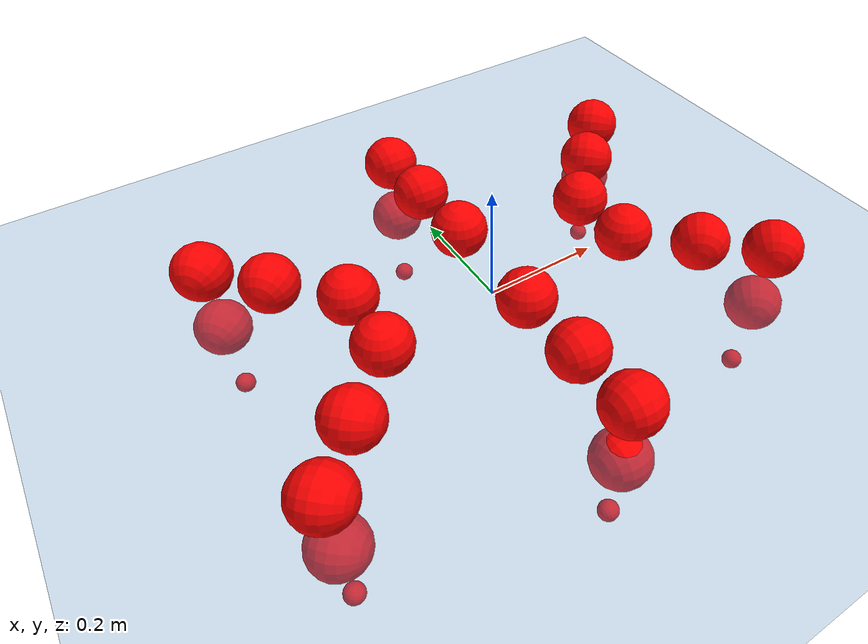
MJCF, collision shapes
<mujoco model="Golem">
  <compiler angle="radian" assetdir="assets" balanceinertia="true" inertiafromgeom="false"/>

  <option timestep="0.005" density="1.2" viscosity="2e-05"/>

  <size nkey="1"/>

  <visual>
    <quality shadowsize="8192"/>
    <map shadowclip="0.5"/>
  </visual>

  <default>
    <default class="/">
      <joint armature="0.01" damping="0.01" frictionloss="0.01"/>
      <geom contype="0" conaffinity="0" group="1" solref="-1000 -80"/>
      <site size="0.01 0.005 0.005" group="5"/>
      <general forcelimited="true" biastype="affine" gainprm="25" biasprm="0 -25 -0.5"/>
      <default class="visual">
        <geom type="mesh" group="2"/>
      </default>
      <default class="collision">
        <geom group="3"/>
      </default>
      <default class="foot">
        <geom size="0.01 0 0" condim="6" group="4" priority="1" solimp="0.015 1 0.01"/>
      </default>
      <default class="reward_collision_sphere">
        <geom group="5" rgba="1 0 0 1"/>
      </default>
    </default>
  </default>

  <asset>
    <texture type="skybox" colorspace="auto" name="//unnamed_texture_0" builtin="gradient" rgb1="0.95 0.95 0.95" rgb2="0.95 0.95 0.95" width="100" height="600"/>
    <texture type="2d" colorspace="auto" name="texplane" builtin="checker" rgb1="0.345 0.575 0.748" rgb2="0.345 0.575 0.748" markrgb="1 1 1" width="512" height="512"/>
    <material name="MatPlane" class="/" texture="texplane" texuniform="true" texrepeat="2 2" specular="0.9"/>
    <mesh name="body" class="/" file="body.stl" scale="0.001 0.001 0.001"/>
    <mesh name="coxa" class="/" file="coxa.stl" scale="0.001 0.001 0.001"/>
    <mesh name="femur" class="/" file="femur.stl" scale="0.001 0.001 0.001"/>
    <mesh name="tibia" class="/" file="tibia.stl" scale="0.001 0.001 0.001"/>
    <mesh name="tarsus" class="/" file="tarsus.stl" scale="0.001 0.001 0.001"/>
  </asset>

  <worldbody>
    <geom name="floor" class="/" size="100 100 0.125" type="plane" group="0" material="MatPlane"/>
    <light name="toplight_shadow" class="/" pos="0 0 5" dir="0.0990148 0.0990148 -0.990148" type="directional" ambient="0.04 0.04 0.04" diffuse="0.55 0.55 0.55" specular="0.12 0.12 0.12"/>
    <light name="toplight_fill" class="/" pos="0 0 5" dir="0.0990148 0.0990148 -0.990148" type="directional" castshadow="false" ambient="0.04 0.04 0.04" diffuse="0.3 0.3 0.3" specular="0.08 0.08 0.08"/>
    <body name="trunk" pos="-0.00204969 -0.00237473 0.00146736" quat="0.999999 0.000198762 -0.000970483 0.000941076">
      <inertial pos="0.00238729 0.000632978 0.000853391" quat="0.999934 -0.0100701 -0.0011461 0.00542477" mass="6.14444" diaginertia="0.0540347 0.0129388 0.0153354"/>
      <joint name="//unnamed_joint_0" type="free"/>
      <geom name="//unnamed_geom_1" class="/" pos="0 0 0.0690008" quat="1 0 0 0" type="mesh" rgba="0.9 0.9 0.9 1" mesh="body"/>
      <site name="imu" class="/" pos="0.184821 0.0103106 0.111149" size="0.0117153"/>
      <camera name="track" class="/" pos="0 -2.08395 0" quat="0.707107 0.707107 0 0" mode="trackcom"/>
      <camera name="ego_camera" class="/" pos="0.181284 0 0.107814" quat="-0.5 -0.5 0.5 0.5"/>
      <body name="coxa_RR" pos="-0.250145 -0.0871188 0.0709682" quat="0.381842 0.000217359 -0.000690062 -0.924227">
        <inertial pos="-5.22428e-05 0.000907646 0.00266572" quat="0.999995 -0.0031227 -0.000704912 0.000525094" mass="0.329568" diaginertia="0.052692 0.0125541 0.0153705"/>
        <joint name="coxa_joint_RR" class="/" pos="0 0 0" axis="-0.00487795 0.00378109 -0.999981" range="-3.1306 3.0846" armature="0.0110572" damping="0.00712564" frictionloss="0.0117828"/>
        <geom name="//unnamed_geom_2" class="/" type="mesh" rgba="0.2 0.2 0.2 1" mesh="coxa"/>
        <geom name="//unnamed_geom_3" class="reward_collision_sphere" size="0.0468613" pos="-0.0418347 0 0"/>
        <body name="femur_RR" pos="0.0836662 -0.00178512 -0.00423756" quat="0.500082 -0.499855 0.500564 0.499498">
          <inertial pos="0.00121998 0.000351976 0.00224" quat="0.999969 0.00499633 -0.0028149 0.00539807" mass="0.318669" diaginertia="0.0527175 0.0122596 0.0143519"/>
          <joint name="femur_joint_RR" class="/" pos="0 0 0" axis="0.0127412 -0.00220078 -0.999916" range="-3.18589 3.13525" armature="0.0120515" damping="0.0231172" frictionloss="0.0119925"/>
          <geom name="//unnamed_geom_4" class="/" type="mesh" rgba="0.9 0.9 0.9 1" mesh="femur"/>
          <geom name="//unnamed_geom_5" class="reward_collision_sphere" size="0.0468613"/>
          <body name="tibia_RR" pos="0.00116155 -0.112713 0.00159088" quat="3.32808e-05 1 8.72209e-06 -4.03036e-06">
            <inertial pos="-0.000842779 0.000689551 -0.000371441" quat="0.999928 -0.00795724 0.00874177 -0.00205779" mass="0.321317" diaginertia="0.0499422 0.012095 0.0140733"/>
            <joint name="tibia_joint_RR" class="/" pos="0 0 0" axis="-0.00369429 -0.00391237 0.999986" range="-3.18629 3.13254" armature="0.0101541" damping="0" frictionloss="0.0109914"/>
            <geom name="//unnamed_geom_6" class="/" type="mesh" rgba="0.2 0.2 0.2 1" mesh="tibia"/>
            <geom name="//unnamed_geom_7" class="reward_collision_sphere" size="0.0468613"/>
            <body name="tarsus_RR" pos="0.123808 0.00243273 -0.00150777" quat="1 0.000108583 5.39947e-05 0.000351987">
              <inertial pos="0.0820536 0.00022707 -0.00126379" quat="0.499962 0.506336 0.49611 0.497531" mass="0.303401" diaginertia="0.0530984 0.0118214 0.0142129"/>
              <joint name="tarsus_joint_RR" class="/" pos="0 0 0" axis="-0.00894788 -0.00306396 0.999955" stiffness="0.00401713" range="-3.12952 3.09664" armature="0.0100692" damping="0.0396959" frictionloss="0.0130737"/>
              <geom name="//unnamed_geom_8" class="/" type="mesh" rgba="0.9 0.9 0.9 1" mesh="tarsus"/>
              <geom name="foot_1" class="foot" size="0.0112546" pos="0.156183 0 0" quat="0 -0.707107 0 0.707107"/>
              <geom name="//unnamed_geom_10" class="reward_collision_sphere" size="0.0468613"/>
              <geom name="//unnamed_geom_11" class="reward_collision_sphere" size="0.017573" pos="0.149908 0 0"/>
              <site name="foot_1" class="foot" pos="0.156183 0 0" quat="0 -0.707107 0 0.707107" size="0.0117153"/>
            </body>
          </body>
        </body>
      </body>
      <body name="coxa_RM" pos="-0.00154205 -0.138591 0.0741358" quat="0.707223 -0.000486123 -0.000612637 -0.70699">
        <inertial pos="-0.000835943 -0.000863131 0.00040375" quat="0.999974 0.0015125 0.00519615 -0.00467598" mass="0.320722" diaginertia="0.0522731 0.01229 0.0138661"/>
        <joint name="coxa_joint_RM" class="/" pos="0 0 0" axis="0.00618324 -0.00477591 -0.999969" stiffness="0.00558058" range="-3.17116 3.13109" armature="0.0121956" damping="0.0129234" frictionloss="0.0101153"/>
        <geom name="//unnamed_geom_12" class="/" type="mesh" rgba="0.2 0.2 0.2 1" mesh="coxa"/>
        <geom name="//unnamed_geom_13" class="reward_collision_sphere" size="0.0468613" pos="-0.0418347 0 0"/>
        <body name="femur_RM" pos="0.0831172 -0.00159923 0.00283842" quat="0.499589 -0.49973 0.500765 0.499914">
          <inertial pos="-0.000643937 -0.000304027 -0.000100504" quat="0.999981 -0.00542019 -0.00284022 0.000131179" mass="0.313645" diaginertia="0.0541833 0.0121415 0.0143686"/>
          <joint name="femur_joint_RM" class="/" pos="0 0 0" axis="-0.00179263 0.00359126 -0.999992" range="-3.15939 3.14101" armature="0.0131957" damping="0.0275557" frictionloss="0.0116322"/>
          <geom name="//unnamed_geom_14" class="/" type="mesh" rgba="0.9 0.9 0.9 1" mesh="femur"/>
          <geom name="//unnamed_geom_15" class="reward_collision_sphere" size="0.0468613"/>
          <body name="tibia_RM" pos="-0.00305892 -0.112077 -0.000545797" quat="0.00013152 1 -6.42678e-05 -0.000252842">
            <inertial pos="0.00137211 0.00287868 -0.00231564" quat="0.999985 0.000813106 -0.000436338 -0.00535754" mass="0.340107" diaginertia="0.0548625 0.0123503 0.0151553"/>
            <joint name="tibia_joint_RM" class="/" pos="0 0 0" axis="-0.00172909 0.00905836 0.999957" range="-3.15691 3.08442" armature="0.0117145" damping="0.0130829" frictionloss="0.0101337"/>
            <geom name="//unnamed_geom_16" class="/" type="mesh" rgba="0.2 0.2 0.2 1" mesh="tibia"/>
            <geom name="//unnamed_geom_17" class="reward_collision_sphere" size="0.0468613"/>
            <body name="tarsus_RM" pos="0.121803 0.00235629 0.00169937" quat="1 -0.000189951 0.000202478 -0.000192566">
              <inertial pos="0.0825791 -0.00204013 0.000381751" quat="0.496938 0.49652 0.507307 0.499159" mass="0.331539" diaginertia="0.0543059 0.0127462 0.0152946"/>
              <joint name="tarsus_joint_RM" class="/" pos="0 0 0" axis="0.00539287 0.00391843 0.999978" stiffness="0.00591812" range="-3.14758 3.13934" armature="0.01181" damping="0.0100669" frictionloss="0.0115038"/>
              <geom name="//unnamed_geom_18" class="/" type="mesh" rgba="0.9 0.9 0.9 1" mesh="tarsus"/>
              <geom name="foot_2" class="foot" size="0.0118943" pos="0.156183 0 0" quat="0 -0.707107 0 0.707107"/>
              <geom name="//unnamed_geom_20" class="reward_collision_sphere" size="0.0468613"/>
              <geom name="//unnamed_geom_21" class="reward_collision_sphere" size="0.017573" pos="0.149908 0 0"/>
              <site name="foot_2" class="foot" pos="0.156183 0 0" quat="0 -0.707107 0 0.707107" size="0.0117153"/>
            </body>
          </body>
        </body>
      </body>
      <body name="coxa_RF" pos="0.24879 -0.0865606 0.0685731" quat="0.923877 -1.34756e-06 4.19598e-06 -0.382689">
        <inertial pos="0.00192958 0.00163793 -0.000422086" quat="0.999995 -0.000466839 -0.000879045 0.00283104" mass="0.32104" diaginertia="0.056104 0.0127892 0.0150023"/>
        <joint name="coxa_joint_RF" class="/" pos="0 0 0" axis="-0.00204846 -0.000706023 -0.999998" range="-3.19379 3.13453" armature="0.0124738" damping="0.0107893" frictionloss="0.0102057"/>
        <geom name="//unnamed_geom_22" class="/" type="mesh" rgba="0.2 0.2 0.2 1" mesh="coxa"/>
        <geom name="//unnamed_geom_23" class="reward_collision_sphere" size="0.0468613" pos="-0.0418347 0 0"/>
        <body name="femur_RF" pos="0.0819867 0.00190402 -0.000288399" quat="0.499546 -0.500459 0.500744 0.49925">
          <inertial pos="0.00246073 -0.00121585 0.00256963" quat="1 0.000295598 0.000919395 -3.45266e-06" mass="0.314631" diaginertia="0.0542774 0.0122091 0.0145395"/>
          <joint name="femur_joint_RF" class="/" pos="0 0 0" axis="0.0115322 -0.000598955 -0.999933" stiffness="0.00834393" range="-3.11473 3.09852" armature="0.0116884" damping="0.0164933" frictionloss="0.0104569"/>
          <geom name="//unnamed_geom_24" class="/" type="mesh" rgba="0.9 0.9 0.9 1" mesh="femur"/>
          <geom name="//unnamed_geom_25" class="reward_collision_sphere" size="0.0468613"/>
          <body name="tibia_RF" pos="-0.00305762 -0.112158 0.000607531" quat="8.40665e-05 1 6.67888e-05 5.25618e-05">
            <inertial pos="0.000628926 -0.00115397 -6.14566e-05" quat="0.999925 0.00853203 -0.00718352 -0.00512123" mass="0.32705" diaginertia="0.0528716 0.0121978 0.0143495"/>
            <joint name="tibia_joint_RF" class="/" pos="0 0 0" axis="0.00770441 -0.00433681 0.999961" stiffness="0.00326773" range="-3.15196 3.10594" armature="0.0114908" damping="0.0316585" frictionloss="0.0113377"/>
            <geom name="//unnamed_geom_26" class="/" type="mesh" rgba="0.2 0.2 0.2 1" mesh="tibia"/>
            <geom name="//unnamed_geom_27" class="reward_collision_sphere" size="0.0468613"/>
            <body name="tarsus_RF" pos="0.1215 -0.000216608 -2.58526e-05" quat="0.999999 0.000997887 5.60423e-05 -0.000204383">
              <inertial pos="0.0832389 -0.000138507 0.00111428" quat="0.49357 0.501973 0.498212 0.506158" mass="0.331114" diaginertia="0.0543482 0.0119925 0.0143569"/>
              <joint name="tarsus_joint_RF" class="/" pos="0 0 0" axis="0.00546368 -0.00492667 0.999973" range="-3.19285 3.14366" armature="0.0123525" damping="0.00216498" frictionloss="0.0105413"/>
              <geom name="//unnamed_geom_28" class="/" type="mesh" rgba="0.9 0.9 0.9 1" mesh="tarsus"/>
              <geom name="foot_3" class="foot" size="0.011446" pos="0.156183 0 0" quat="0 -0.707107 0 0.707107"/>
              <geom name="//unnamed_geom_30" class="reward_collision_sphere" size="0.0468613"/>
              <geom name="//unnamed_geom_31" class="reward_collision_sphere" size="0.017573" pos="0.149908 0 0"/>
              <site name="foot_3" class="foot" pos="0.156183 0 0" quat="0 -0.707107 0 0.707107" size="0.0117153"/>
            </body>
          </body>
        </body>
      </body>
      <body name="coxa_LR" pos="-0.246385 0.0902015 0.0674162" quat="0.382723 -7.35232e-05 -1.70731e-05 0.923863">
        <inertial pos="-0.00073425 0.00186673 0.00167143" quat="0.999981 0.000873923 0.000818204 0.0060007" mass="0.329314" diaginertia="0.0545618 0.0126316 0.0153701"/>
        <joint name="coxa_joint_LR" class="/" pos="0 0 0" axis="-0.00285405 -0.00149896 -0.999995" stiffness="0.0051402" range="-3.18699 3.10491" armature="0.0124894" damping="0.0106466" frictionloss="0.0126866"/>
        <geom name="//unnamed_geom_32" class="/" type="mesh" rgba="0.2 0.2 0.2 1" mesh="coxa"/>
        <geom name="//unnamed_geom_33" class="reward_collision_sphere" size="0.0468613" pos="-0.0418347 0 0"/>
        <body name="femur_LR" pos="0.0831453 0.0017657 0.0018591" quat="0.500014 -0.500001 0.499997 0.499988">
          <inertial pos="0.00103353 -2.78426e-05 -4.32337e-05" quat="0.999925 0.00387816 0.0109067 0.00412193" mass="0.310964" diaginertia="0.0493317 0.0115925 0.0140829"/>
          <joint name="femur_joint_LR" class="/" pos="0 0 0" axis="0.0109337 -0.00211689 0.999938" range="-3.15335 3.11399" armature="0.0127589" damping="0.00482696" frictionloss="0.0102933"/>
          <geom name="//unnamed_geom_34" class="/" type="mesh" rgba="0.9 0.9 0.9 1" mesh="femur"/>
          <geom name="//unnamed_geom_35" class="reward_collision_sphere" size="0.0468613"/>
          <body name="tibia_LR" pos="-9.09083e-07 -0.112958 -0.00277381" quat="0.000310079 1 0.000546177 0.000108269">
            <inertial pos="0.00216543 -0.000885187 -0.000268551" quat="0.999987 -0.00202829 0.000975621 0.00460986" mass="0.316575" diaginertia="0.0517171 0.0124691 0.0149582"/>
            <joint name="tibia_joint_LR" class="/" pos="0 0 0" axis="-0.00828455 -0.00225935 -0.999963" stiffness="0.00344008" range="-3.12817 3.1376" armature="0.0132963" damping="0.00753697" frictionloss="0.0131672"/>
            <geom name="//unnamed_geom_36" class="/" type="mesh" rgba="0.2 0.2 0.2 1" mesh="tibia"/>
            <geom name="//unnamed_geom_37" class="reward_collision_sphere" size="0.0468613"/>
            <body name="tarsus_LR" pos="0.123244 -0.0013171 -0.00228925" quat="0.999999 -0.000919271 -0.000897128 0.00040727">
              <inertial pos="0.0812251 -0.00203095 -0.00266472" quat="0.504852 0.498985 0.489306 0.506673" mass="0.330477" diaginertia="0.0537334 0.0125832 0.0150778"/>
              <joint name="tarsus_joint_LR" class="/" pos="0 0 0" axis="-4.04436e-05 -4.49458e-05 -1" stiffness="0.00236925" range="-3.16561 3.10744" armature="0.012732" damping="0.027501" frictionloss="0.0101724"/>
              <geom name="//unnamed_geom_38" class="/" type="mesh" rgba="0.9 0.9 0.9 1" mesh="tarsus"/>
              <geom name="foot_4" class="foot" size="0.0126771" pos="0.156183 0 0" quat="0.707107 0 -0.707107 0"/>
              <geom name="//unnamed_geom_40" class="reward_collision_sphere" size="0.0468613"/>
              <geom name="//unnamed_geom_41" class="reward_collision_sphere" size="0.017573" pos="0.149908 0 0"/>
              <site name="foot_4" class="foot" pos="0.156183 0 0" quat="0.707107 0 -0.707107 0" size="0.0117153"/>
            </body>
          </body>
        </body>
      </body>
      <body name="coxa_LM" pos="-0.00201902 0.134588 0.0725092" quat="0.706579 0.00103967 8.95563e-05 0.707634">
        <inertial pos="0.000678847 0.000138217 -0.00213673" quat="0.999993 -0.00129545 0.00241381 -0.00236345" mass="0.320766" diaginertia="0.0537755 0.0128207 0.0152169"/>
        <joint name="coxa_joint_LM" class="/" pos="0 0 0" axis="-0.00164811 0.000192552 -0.999999" range="-3.12066 3.12895" armature="0.0104968" damping="0" frictionloss="0.0132012"/>
        <geom name="//unnamed_geom_42" class="/" type="mesh" rgba="0.2 0.2 0.2 1" mesh="coxa"/>
        <geom name="//unnamed_geom_43" class="reward_collision_sphere" size="0.0468613" pos="-0.0418347 0 0"/>
        <body name="femur_LM" pos="0.0804831 0.00200835 -0.00151607" quat="0.500577 -0.499562 0.499742 0.500119">
          <inertial pos="-0.000805119 3.84132e-05 0.000231238" quat="0.999929 0.00784023 -0.008491 0.00294174" mass="0.328615" diaginertia="0.0526744 0.0126241 0.0148978"/>
          <joint name="femur_joint_LM" class="/" pos="0 0 0" axis="-0.00152792 -0.000948293 0.999998" range="-3.09607 3.18523" armature="0.0130287" damping="0" frictionloss="0.0116869"/>
          <geom name="//unnamed_geom_44" class="/" type="mesh" rgba="0.9 0.9 0.9 1" mesh="femur"/>
          <geom name="//unnamed_geom_45" class="reward_collision_sphere" size="0.0468613"/>
          <body name="tibia_LM" pos="0.00235421 -0.107737 0.00148239" quat="0.000665083 1 -0.000371184 -0.000551302">
            <inertial pos="-0.00123838 -0.0018766 -0.00224992" quat="0.999995 0.00134946 -5.04781e-05 0.0027728" mass="0.322384" diaginertia="0.0513501 0.0123825 0.0149675"/>
            <joint name="tibia_joint_LM" class="/" pos="0 0 0" axis="-0.00363983 -0.011266 -0.99993" range="-3.09187 3.12948" armature="0.0128875" damping="0.0115421" frictionloss="0.0109569"/>
            <geom name="//unnamed_geom_46" class="/" type="mesh" rgba="0.2 0.2 0.2 1" mesh="tibia"/>
            <geom name="//unnamed_geom_47" class="reward_collision_sphere" size="0.0468613"/>
            <body name="tarsus_LM" pos="0.120018 -0.000699047 0.000872113" quat="0.999999 0.000208017 -0.00104312 -0.000314862">
              <inertial pos="0.0864619 0.00239844 0.00226608" quat="0.499964 0.49948 0.499507 0.501046" mass="0.315122" diaginertia="0.0522573 0.0116528 0.0138161"/>
              <joint name="tarsus_joint_LM" class="/" pos="0 0 0" axis="0.00370184 -0.000451324 -0.999993" range="-3.08264 3.15134" armature="0.0114706" damping="0.0147232" frictionloss="0.0119061"/>
              <geom name="//unnamed_geom_48" class="/" type="mesh" rgba="0.9 0.9 0.9 1" mesh="tarsus"/>
              <geom name="foot_5" class="foot" size="0.0116663" pos="0.156183 0 0" quat="0.707107 0 -0.707107 0"/>
              <geom name="//unnamed_geom_50" class="reward_collision_sphere" size="0.0468613"/>
              <geom name="//unnamed_geom_51" class="reward_collision_sphere" size="0.017573" pos="0.149908 0 0"/>
              <site name="foot_5" class="foot" pos="0.156183 0 0" quat="0.707107 0 -0.707107 0" size="0.0117153"/>
            </body>
          </body>
        </body>
      </body>
      <body name="coxa_LF" pos="0.249042 0.0845586 0.0653463" quat="0.923862 -8.01161e-05 0.000111167 0.382727">
        <inertial pos="-0.000435325 -0.0015438 0.00111275" quat="0.999993 -0.00137194 -0.00135038 0.00308175" mass="0.310742" diaginertia="0.0501438 0.0122031 0.0141078"/>
        <joint name="coxa_joint_LF" class="/" pos="0 0 0" axis="0.00986957 -0.00812412 -0.999918" range="-3.13615 3.13623" armature="0.0102256" damping="0.0275153" frictionloss="0.0131228"/>
        <geom name="//unnamed_geom_52" class="/" type="mesh" rgba="0.2 0.2 0.2 1" mesh="coxa"/>
        <geom name="//unnamed_geom_53" class="reward_collision_sphere" size="0.0468613" pos="-0.0418347 0 0"/>
        <body name="femur_LF" pos="0.0804358 0.00330364 0.00061767" quat="0.499894 -0.500122 0.499682 0.500302">
          <inertial pos="0.00191968 -0.00201875 -0.00215461" quat="1 -0.000507261 0.000225124 -0.000466796" mass="0.321864" diaginertia="0.0511663 0.0118856 0.0145569"/>
          <joint name="femur_joint_LF" class="/" pos="0 0 0" axis="0.00273711 -0.00368242 0.999989" stiffness="0.00575534" range="-3.12361 3.16336" armature="0.0119839" damping="0" frictionloss="0.0129227"/>
          <geom name="//unnamed_geom_54" class="/" type="mesh" rgba="0.9 0.9 0.9 1" mesh="femur"/>
          <geom name="//unnamed_geom_55" class="reward_collision_sphere" size="0.0468613"/>
          <body name="tibia_LF" pos="-0.000126811 -0.11487 0.00157075" quat="-5.77752e-06 1 8.38138e-06 -8.95783e-06">
            <inertial pos="0.00206911 0.000845845 -0.000193509" quat="0.999985 -0.00253561 0.00250263 -0.00405685" mass="0.325801" diaginertia="0.0511608 0.012275 0.0141182"/>
            <joint name="tibia_joint_LF" class="/" pos="0 0 0" axis="0.00172763 0.00345526 -0.999993" stiffness="0.000638612" range="-3.15098 3.13214" armature="0.0128975" damping="0" frictionloss="0.0114706"/>
            <geom name="//unnamed_geom_56" class="/" type="mesh" rgba="0.2 0.2 0.2 1" mesh="tibia"/>
            <geom name="//unnamed_geom_57" class="reward_collision_sphere" size="0.0468613"/>
            <body name="tarsus_LF" pos="0.124083 0.001794 -0.00332609" quat="0.999999 -0.00052909 -0.000409536 -0.00104058">
              <inertial pos="0.0822872 -0.000139945 0.000627413" quat="0.5 0.500002 0.499988 0.500011" mass="0.318704" diaginertia="0.0546623 0.0126896 0.0146442"/>
              <joint name="tarsus_joint_LF" class="/" pos="0 0 0" axis="0.00680372 -0.00746609 -0.999949" stiffness="0.0296048" range="-3.0872 3.12637" armature="0.013286" damping="0.0294812" frictionloss="0.0132547"/>
              <geom name="//unnamed_geom_58" class="/" type="mesh" rgba="0.9 0.9 0.9 1" mesh="tarsus"/>
              <geom name="foot_6" class="foot" size="0.011449" pos="0.156183 0 0" quat="0.707107 0 -0.707107 0"/>
              <geom name="//unnamed_geom_60" class="reward_collision_sphere" size="0.0468613"/>
              <geom name="//unnamed_geom_61" class="reward_collision_sphere" size="0.017573" pos="0.149908 0 0"/>
              <site name="foot_6" class="foot" pos="0.156183 0 0" quat="0.707107 0 -0.707107 0" size="0.0117153"/>
            </body>
          </body>
        </body>
      </body>
    </body>
  </worldbody>

  <contact>
    <pair class="/" geom1="floor" geom2="foot_1" name="//unnamed_contact_0"/>
    <pair class="/" geom1="floor" geom2="foot_2" name="//unnamed_contact_1"/>
    <pair class="/" geom1="floor" geom2="foot_3" name="//unnamed_contact_2"/>
    <pair class="/" geom1="floor" geom2="foot_4" name="//unnamed_contact_3"/>
    <pair class="/" geom1="floor" geom2="foot_5" name="//unnamed_contact_4"/>
    <pair class="/" geom1="floor" geom2="foot_6" name="//unnamed_contact_5"/>
  </contact>

  <actuator>
    <general name="coxa_joint_RR" class="/" joint="coxa_joint_RR" forcerange="-8.86727 8.86727" gainprm="28.4892" biasprm="0 -28.4892 -0.561106"/>
    <general name="femur_joint_RR" class="/" joint="femur_joint_RR" forcerange="-9.41843 9.41843" gainprm="28.4892" biasprm="0 -28.4892 -0.561106"/>
    <general name="tibia_joint_RR" class="/" joint="tibia_joint_RR" forcerange="-9.15567 9.15567" gainprm="28.4892" biasprm="0 -28.4892 -0.561106"/>
    <general name="tarsus_joint_RR" class="/" joint="tarsus_joint_RR" forcerange="-9.36129 9.36129" gainprm="28.4892" biasprm="0 -28.4892 -0.561106"/>
    <general name="coxa_joint_RM" class="/" joint="coxa_joint_RM" forcerange="-8.49569 8.49569" gainprm="28.4892" biasprm="0 -28.4892 -0.561106"/>
    <general name="femur_joint_RM" class="/" joint="femur_joint_RM" forcerange="-8.63234 8.63234" gainprm="28.4892" biasprm="0 -28.4892 -0.561106"/>
    <general name="tibia_joint_RM" class="/" joint="tibia_joint_RM" forcerange="-8.60901 8.60901" gainprm="28.4892" biasprm="0 -28.4892 -0.561106"/>
    <general name="tarsus_joint_RM" class="/" joint="tarsus_joint_RM" forcerange="-8.05623 8.05623" gainprm="28.4892" biasprm="0 -28.4892 -0.561106"/>
    <general name="coxa_joint_RF" class="/" joint="coxa_joint_RF" forcerange="-9.13098 9.13098" gainprm="28.4892" biasprm="0 -28.4892 -0.561106"/>
    <general name="femur_joint_RF" class="/" joint="femur_joint_RF" forcerange="-8.84025 8.84025" gainprm="28.4892" biasprm="0 -28.4892 -0.561106"/>
    <general name="tibia_joint_RF" class="/" joint="tibia_joint_RF" forcerange="-8.31677 8.31677" gainprm="28.4892" biasprm="0 -28.4892 -0.561106"/>
    <general name="tarsus_joint_RF" class="/" joint="tarsus_joint_RF" forcerange="-9.42218 9.42218" gainprm="28.4892" biasprm="0 -28.4892 -0.561106"/>
    <general name="coxa_joint_LR" class="/" joint="coxa_joint_LR" forcerange="-8.61756 8.61756" gainprm="28.4892" biasprm="0 -28.4892 -0.561106"/>
    <general name="femur_joint_LR" class="/" joint="femur_joint_LR" forcerange="-8.30474 8.30474" gainprm="28.4892" biasprm="0 -28.4892 -0.561106"/>
    <general name="tibia_joint_LR" class="/" joint="tibia_joint_LR" forcerange="-7.6783 7.6783" gainprm="28.4892" biasprm="0 -28.4892 -0.561106"/>
    <general name="tarsus_joint_LR" class="/" joint="tarsus_joint_LR" forcerange="-7.92561 7.92561" gainprm="28.4892" biasprm="0 -28.4892 -0.561106"/>
    <general name="coxa_joint_LM" class="/" joint="coxa_joint_LM" forcerange="-7.67856 7.67856" gainprm="28.4892" biasprm="0 -28.4892 -0.561106"/>
    <general name="femur_joint_LM" class="/" joint="femur_joint_LM" forcerange="-7.80527 7.80527" gainprm="28.4892" biasprm="0 -28.4892 -0.561106"/>
    <general name="tibia_joint_LM" class="/" joint="tibia_joint_LM" forcerange="-8.06126 8.06126" gainprm="28.4892" biasprm="0 -28.4892 -0.561106"/>
    <general name="tarsus_joint_LM" class="/" joint="tarsus_joint_LM" forcerange="-7.99649 7.99649" gainprm="28.4892" biasprm="0 -28.4892 -0.561106"/>
    <general name="coxa_joint_LF" class="/" joint="coxa_joint_LF" forcerange="-7.69402 7.69402" gainprm="28.4892" biasprm="0 -28.4892 -0.561106"/>
    <general name="femur_joint_LF" class="/" joint="femur_joint_LF" forcerange="-9.24326 9.24326" gainprm="28.4892" biasprm="0 -28.4892 -0.561106"/>
    <general name="tibia_joint_LF" class="/" joint="tibia_joint_LF" forcerange="-9.15756 9.15756" gainprm="28.4892" biasprm="0 -28.4892 -0.561106"/>
    <general name="tarsus_joint_LF" class="/" joint="tarsus_joint_LF" forcerange="-7.67415 7.67415" gainprm="28.4892" biasprm="0 -28.4892 -0.561106"/>
  </actuator>

  <sensor>
    <gyro site="imu" name="imu_angular_velocity"/>
    <velocimeter site="imu" name="imu_linear_velocity"/>
    <framelinvel objtype="site" objname="foot_1" name="foot_1_global_linear_velocity"/>
    <framelinvel objtype="site" objname="foot_2" name="foot_2_global_linear_velocity"/>
    <framelinvel objtype="site" objname="foot_3" name="foot_3_global_linear_velocity"/>
    <framelinvel objtype="site" objname="foot_4" name="foot_4_global_linear_velocity"/>
    <framelinvel objtype="site" objname="foot_5" name="foot_5_global_linear_velocity"/>
    <framelinvel objtype="site" objname="foot_6" name="foot_6_global_linear_velocity"/>
  </sensor>

  <keyframe>
    <key name="home" qpos="0 0 0.1457 1 0 0 0 0 0 0 0 0 0 0 0 0 0 0 0 0 0 0 0 0 0 0 0 0 0 0 0"/>
  </keyframe>
</mujoco>
